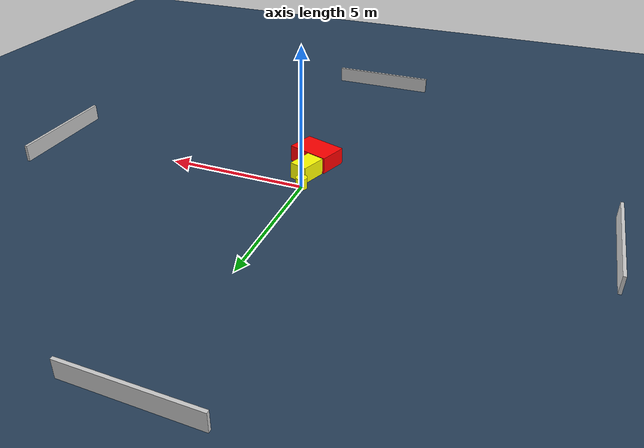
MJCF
<?xml version="1.0" ?>
<mujoco model="generated_environment">
  <option timestep="0.01" integrator="RK4" cone="elliptic"/>
  <default>
    <geom density="1"/>
  </default>
  <asset>
    <texture builtin="gradient" height="3072" name="skybox" rgb1="0.3 0.5 0.7" rgb2="0 0 0" type="skybox" width="512"/>
    <texture builtin="checker" height="300" name="groundplane" rgb1="0.2 0.3 0.4" rgb2="0.1 0.2 0.3" type="2d" width="300"/>
    <material name="groundplane" reflectance="0.2" texrepeat="5 5" texture="groundplane"/>
  </asset>
  <worldbody>
    <light dir="0 0 -1" directional="true" pos="0 0 1.5"/>
    <geom condim="3" friction="0.5 0.005 0.001" material="groundplane" name="floor" pos="0 0 0" size="0 0 0.05" type="plane"/>
    <body name="walls">
      <geom name="wall_1" condim="4" pos="-10.0 0.0 0.3" rgba="0.800000011920929 0.800000011920929 0.800000011920929 1.0" size="0.05 2.0 0.3" type="box"/>
      <geom name="wall_2" condim="4" pos="10.0 0.0 0.3" rgba="0.800000011920929 0.800000011920929 0.800000011920929 1.0" size="0.05 2.0 0.3" type="box"/>
      <geom name="wall_3" condim="4" pos="0.0 -10.0 0.3" rgba="0.800000011920929 0.800000011920929 0.800000011920929 1.0" size="2.0 0.05 0.3" type="box"/>
      <geom name="wall_4" condim="4" pos="0.0 10.0 0.3" rgba="0.800000011920929 0.800000011920929 0.800000011920929 1.0" size="2.0 0.05 0.3" type="box"/>
    </body>
    <body name="robot">
      <joint name="joint_x" type="slide" pos="0 0 0" axis="1 0 0"/>
      <joint name="joint_y" type="slide" pos="0 0 0" axis="0 1 0"/>
      <geom name="robot" type="cylinder" pos="0.0 0.0 0.2" size="0.2 0.2 0.0" mass="5.0" friction="1.0 0.005 0.0001" condim="4" rgba="1.0 1.0 0.0 1.0"/>
    </body>
    <body name="obstacle_1_movable">
      <geom name="obstacle_1_movable" condim="4" pos="0.13601815126466738 -0.8179670702446147 0.3" euler="0 0 71.01782370033236" friction="0.0 0.005 0.001" rgba="1.0 1.0 0.0 1.0" size="0.4707544393075727 0.32994663465253093 0.3" type="box" mass="0.1"/>
      <joint type="free"/>
    </body>
    <body name="obstacle_2_static">
      <geom name="obstacle_2_static" condim="4" pos="0.18893659003235352 -1.9206029719795503 0.3" euler="0 0 71.49327047098235" friction="0.0 0.005 0.001" rgba="1.0 0.0 0.0 1.0" size="0.5231831970811733 0.7712260707636709 0.3" type="box"/>
    </body>
  </worldbody>
  <actuator>
    <motor name="actuator_x" joint="joint_x" gear="1" ctrlrange="-1 1"/>
    <motor name="actuator_y" joint="joint_y" gear="1" ctrlrange="-1 1"/>
  </actuator>
</mujoco>
